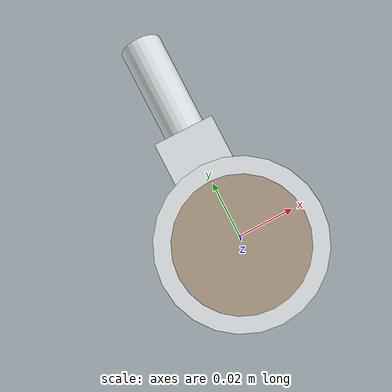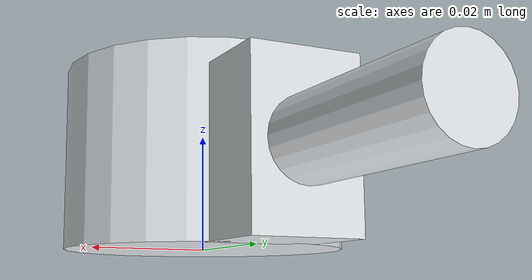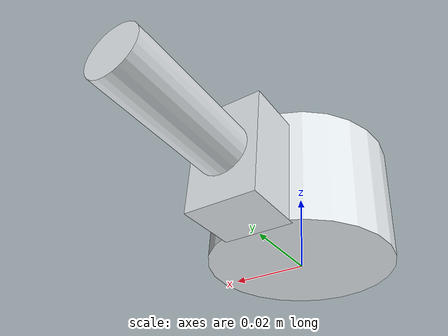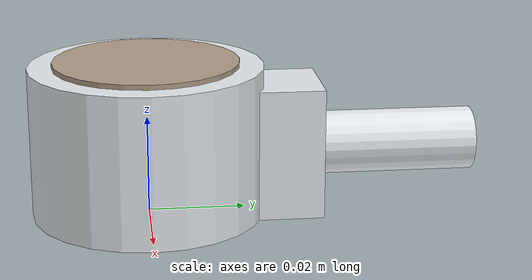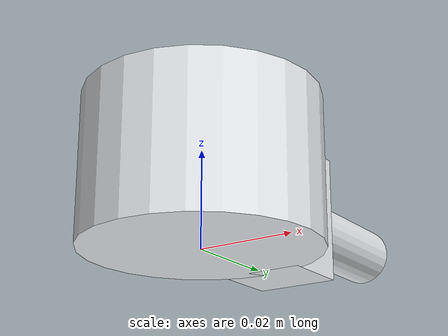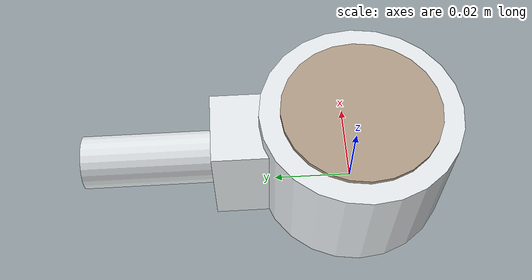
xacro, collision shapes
<?xml version="1.0"?>
<robot xmlns:xacro="http://wiki.ros.org/xacro"
       name="sensor" >

  <xacro:arg name="prefix" default="ft_sensor0"/>

  <xacro:include filename="$(find rokubi_kinova_adapter)/urdf/BFT_ROKS_SER_M8.urdf.xacro" />

  <xacro:BFT_ROKS_SER_M8 prefix="$(arg prefix)" />

  <link name="world" />

  <joint name="world_joint" type="fixed">
    <parent link="world" />
    <child link = "ft_sensor0_mounting" />
    <origin xyz="0.0 0.0 0.0" rpy="0.0 0.0 0.0" />
  </joint>

</robot>

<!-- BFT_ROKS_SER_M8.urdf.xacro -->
<root xmlns:xi="http://www.w3.org/2001/XInclude"
    xmlns:gazebo="http://playerstage.sourceforge.net/gazebo/xmlschema/#gz"
    xmlns:model="http://playerstage.sourceforge.net/gazebo/xmlschema/#model"
    xmlns:sensor="http://playerstage.sourceforge.net/gazebo/xmlschema/#sensor"
    xmlns:body="http://playerstage.sourceforge.net/gazebo/xmlschema/#body"
    xmlns:geom="http://playerstage.sourceforge.net/gazebo/xmlschema/#geom"
    xmlns:joint="http://playerstage.sourceforge.net/gazebo/xmlschema/#joint"
    xmlns:controller="http://playerstage.sourceforge.net/gazebo/xmlschema/#controller"
    xmlns:interface="http://playerstage.sourceforge.net/gazebo/xmlschema/#interface"
    xmlns:rendering="http://playerstage.sourceforge.net/gazebo/xmlschema/#rendering"
    xmlns:renderable="http://playerstage.sourceforge.net/gazebo/xmlschema/#renderable"
    xmlns:physics="http://playerstage.sourceforge.net/gazebo/xmlschema/#physics"
    xmlns:xacro="http://www.ros.org/wiki/xacro">

  <xacro:macro name="BFT_ROKS_SER_M8" params="prefix">
    <link
      name="${prefix}_mounting">
      <inertial>
        <origin
          xyz="-2.2475E-05 0.00127 0.014438"
          rpy="0 0 0" />
        <mass
          value="0.068987" />
        <inertia
          ixx="1.7966E-05"
          ixy="-2.0386E-08"
          ixz="7.7509E-09"
          iyy="1.7744E-05"
          iyz="-1.1863E-08"
          izz="2.7696E-05" />
      </inertial>
      <visual>
        <origin
          xyz="0 0 0"
          rpy="0 0 0" />
        <geometry>
          <mesh
            filename="package://rokubi_kinova_adapter/meshes/sensor/BFT_ROKS_SER_M8/mounting.STL" />
        </geometry>
        <material
          name="Bota_material">
          <color
            rgba="0.89804 0.91765 0.92941 1" />
        </material>
      </visual>
      <collision>
        <origin
          xyz="0 0 0.0155"
          rpy="0 0 0" />
        <geometry>
          <cylinder radius="0.024" length="0.031"/>
        </geometry>
      </collision>
      <collision>
        <origin
          xyz="0 0.028 0.0135"
          rpy="0 0 0" />
        <geometry>
          <box size="0.018 0.015 0.027" />
        </geometry>
      </collision>
      <collision>
        <origin
          xyz="0 0.0515 0.0135"
          rpy="1.57 0 0" />
        <geometry>
          <cylinder radius="0.0065" length="0.032"/>
        </geometry>
      </collision>
    </link>
    <link
      name="${prefix}_wrench">
      <inertial>
        <origin
          xyz="-1.6253E-08 6.5136E-06 -0.0075009"
          rpy="0 0 0" />
        <mass
          value="0.028727" />
        <inertia
          ixx="3.2695E-06"
          ixy="9.1326E-13"
          ixz="-1.2355E-12"
          iyy="3.2665E-06"
          iyz="-3.9713E-10"
          izz="5.081E-06" />
      </inertial>
      <visual>
        <origin
          xyz="0 0 0"
          rpy="0 0 0" />
        <geometry>
          <mesh
            filename="package://rokubi_kinova_adapter/meshes/sensor/BFT_ROKS_SER_M8/wrench.STL" />
        </geometry>
        <material
          name="Bota_material">
          <color
            rgba="0.6902 0.61176 0.52941 1" />
        </material>
      </visual>
      <collision>
        <origin
          xyz="0 0 -0.009"
          rpy="0 0 0" />
        <geometry>
          <cylinder radius="0.019" length="0.018"/>
        </geometry>
      </collision>
    </link>
    <joint
      name="${prefix}_mounting_to_wrench"
      type="fixed">
      <origin
        xyz="0 0 0.032"
        rpy="0 0 0" />
      <parent
        link="${prefix}_mounting" />
      <child
        link="${prefix}_wrench" />
      <axis
        xyz="0 0 0" />
    </joint>
  </xacro:macro>
</root>
